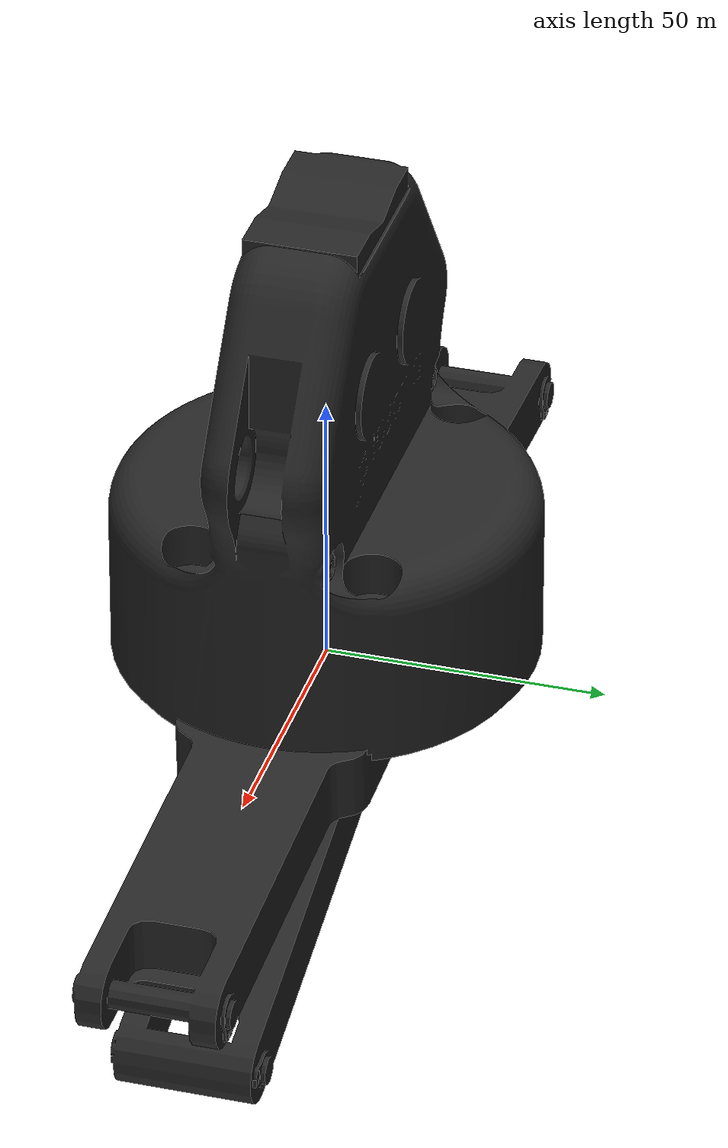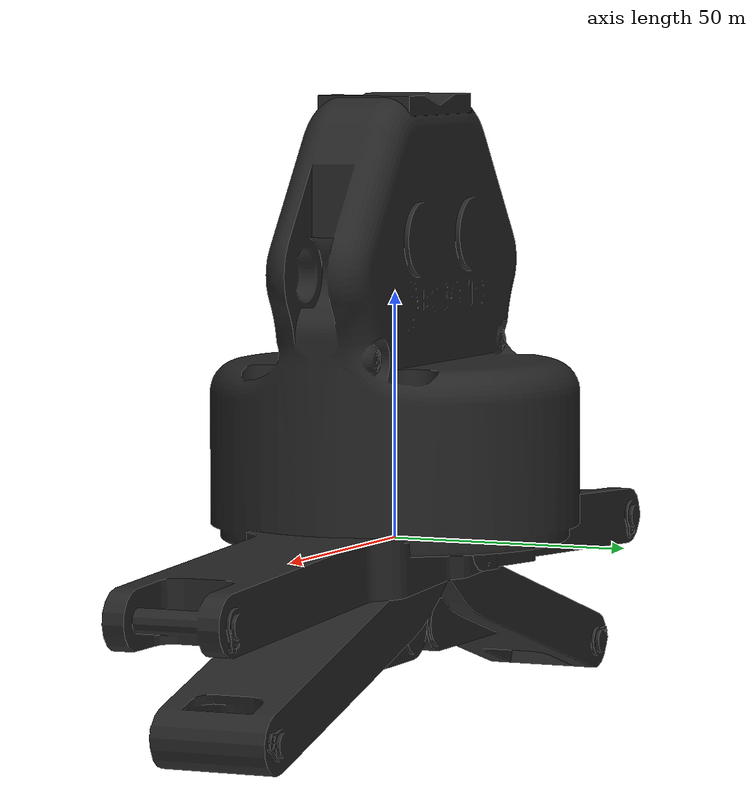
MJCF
<mujoco model="robotiq_2f140">
  <compiler angle="radian" meshdir="assets" autolimits="true"/>

  <option cone="elliptic" impratio="10"/>

  <asset>
    <material name="metal" rgba="0.58 0.58 0.58 1"/>
    <material name="silicone" rgba="0.1882 0.1882 0.1882 1"/>
    <material name="gray" rgba="0.4627 0.4627 0.4627 1"/>
    <material name="black" rgba="0.149 0.149 0.149 1"/>

    <mesh class="2f140" scale="0.001 0.001 0.001" file="base_mount.stl"/>
    <mesh class="2f140" file="base.stl"/>
    <mesh class="2f140" file="driver.stl"/>
    <mesh class="2f140" file="follower.stl"/>
    <mesh class="2f140" file="coupler.stl"/>
    <mesh class="2f140" scale="0.001 0.001 0.001" file="pad.stl"/>
    <mesh class="2f140" scale="0.001 0.001 0.001" file="silicone_pad.stl"/>
    <mesh class="2f140" file="spring_link.stl"/>
  </asset>

<!--
driver = outer knuckle
coupler = outer finger
spring_link = inner knuckle
follower = inner finger
 -->

  <default>
    <default class="2f140">
      <general biastype="affine"/>
      <joint axis="1 0 0"/>
      <default class="driver">
        <joint range="-0.8 0" armature="0.005" damping="0.1" solimplimit="0.95 0.99 0.001" solreflimit="0.005 1"/>
      </default>
      <default class="follower">
        <joint range="-0.8757 0.8757" armature="0.001" solimplimit="0.95 0.99 0.001" pos="0 0.005 -0.0175" solreflimit="0.005 1"/>
      </default>
      <default class="spring_link">
        <joint range="-0.8 0.29670597283" armature="0.001" stiffness="0.05" springref="-2.62" damping="0.00125"/>
      </default>
      <default class="coupler">
        <joint range="0 1.57" armature="0.001" solimplimit="0.95 0.99 0.001" solreflimit="0.005 1"/>
      </default>

      <default class="visual">
        <geom type="mesh" contype="0" conaffinity="0" group="2"/>
      </default>
      <default class="collision">
        <geom type="mesh" group="3"/>
        <default class="pad_box1">
          <geom mass="0" type="box" pos="0 -0.0026 0.028125" size="0.011 0.004 0.009375" friction="0.7"
            solimp="0.95 0.99 0.001" solref="0.004 1" priority="1" rgba="0.55 0.55 0.55 1"/>
        </default>
        <default class="pad_box2">
          <geom mass="0" type="box" pos="0 -0.0026 0.009375" size="0.011 0.004 0.009375" friction="0.6"
            solimp="0.95 0.99 0.001" solref="0.004 1" priority="1" rgba="0.45 0.45 0.45 1"/>
        </default>
      </default>
    </default>
  </default>
  <worldbody>
    <body name="base_mount" pos="0 0 0.007" childclass="2f140">
      <geom class="visual" mesh="base_mount" material="black"/>
      <geom class="collision" mesh="base_mount"/>
      <body name="base" pos="0 0 0.0038" quat="1 0 0 -1">
        <inertial mass="0.777441" pos="0 -2.70394e-05 0.0354675" quat="1 -0.00152849 0 0"
          diaginertia="0.000260285 0.000225381 0.000152708"/>
        <geom class="visual" mesh="base" material="black"/>
        <geom class="collision" mesh="base"/>
        <!-- Right-hand side 4-bar linkage -->
        <body name="right_driver" pos="0 0.030601 0.054905" quat="0 0 0.911903 0.410405">
          <inertial mass="0.0311462" pos="0.000163875 0.0458404 0.0117804" quat="0.881368 0.472423 -0.0024451 -0.000996122"
            diaginertia="2.96023e-05 2.79814e-05 4.39017e-06"/>
          <joint name="right_driver_joint" class="driver"/>
          <geom class="visual" mesh="driver" material="gray"/>
          <geom class="collision" mesh="driver"/>
          <body name="right_coupler" pos="0 0.01822 0.026001" quat="1 0 0 0">
            <inertial mass="0.0140974" pos="0 0.00301209 0.0232175" quat="0.705636 -0.0455904 0.0455904 0.705636"
              diaginertia="4.16206e-06 3.52216e-06 8.88131e-07"/>
            <joint name="right_coupler_joint" class="coupler"/>
            <geom class="visual" mesh="coupler" material="black"/>
            <geom class="collision" mesh="coupler"/>
          </body>
        </body>
        <body name="right_spring_link" pos="0 0.0127 0.06142" quat="0 0 -0.9135455 -0.406736">
          <inertial mass="0.0271177" pos="0.000123012 0.0507851 0.00103969" quat="0.497203 0.502496 -0.507943 0.492221"
            diaginertia="2.83809e-05 2.61936e-05 2.81319e-06"/>
          <joint name="right_spring_link_joint" class="spring_link"/>
          <geom class="visual" mesh="spring_link" material="black"/>
          <geom class="collision" mesh="spring_link"/>
          <body name="right_follower" pos="0 0.107454 0.01451853" quat="0.935013 -0.354613 0 0">
            <inertial mass="0.0261503" pos="0.000119314 0.0339244 -0.021841" quat="0.545437 0.430197 -0.442938 0.566776"
              diaginertia="1.62408e-05 1.59131e-05 2.38936e-06"/>
            <joint name="right_follower_joint" class="follower"/>
            <geom class="visual" mesh="follower" material="black"/>
            <geom class="collision" mesh="follower"/>
            <body name="right_pad" pos="0 0.012 -0.0294" quat="0.707107 -0.707107 0 0">
              <geom class="pad_box1" name="right_pad1"/>
              <geom class="pad_box2" name="right_pad2"/>
              <inertial mass="0.0035" pos="0 -0.0025 0.0185" quat="0.707107 0 0 0.707107"
                diaginertia="4.73958e-07 3.64583e-07 1.23958e-07"/>
              <geom class="visual" mesh="pad"/>
              <body name="right_silicone_pad">
                <geom class="visual" mesh="silicone_pad" material="black"/>
              </body>
            </body>
          </body>
        </body>
        <!-- Left-hand side 4-bar linkage -->
        <body name="left_driver" pos="0 -0.0306011 0.054904" quat="0.410405 0.911903 0 0">
          <inertial mass="0.0311462" pos="0.000163875 0.0458404 0.0117804" quat="0.881368 0.472423 -0.0024451 -0.000996122"
            diaginertia="2.96023e-05 2.79814e-05 4.39017e-06"/>
          <joint name="left_driver_joint" class="driver"/>
          <geom class="visual" mesh="driver" material="gray"/>
          <geom class="collision" mesh="driver"/>
          <body name="left_coupler" pos="0 0.01822 0.026001" quat="1 0 0 0">
            <inertial mass="0.0140974" pos="0 0.00301209 0.0232175" quat="0.705636 -0.0455904 0.0455904 0.705636"
              diaginertia="4.16206e-06 3.52216e-06 8.88131e-07"/>
            <joint name="left_coupler_joint" class="coupler"/>
            <geom class="visual" mesh="coupler" material="black"/>
            <geom class="collision" mesh="coupler"/>
          </body>
        </body>
        <body name="left_spring_link" pos="0 -0.0127 0.06142" quat="0.410405 0.911903 0 0">
          <inertial mass="0.0271177" pos="0.000123012 0.0507851 0.00103969" quat="0.497203 0.502496 -0.507943 0.492221"
            diaginertia="2.83809e-05 2.61936e-05 2.81319e-06"/>
          <joint name="left_spring_link_joint" class="spring_link"/>
          <geom class="visual" mesh="spring_link" material="black"/>
          <geom class="collision" mesh="spring_link"/>
          <body name="left_follower" pos="0 0.107454 0.01451853" quat="0.935013 -0.354613 0 0">
            <inertial mass="0.0261503" pos="0.000119314 0.0339244 -0.021841" quat="0.545437 0.430197 -0.442938 0.566776"
              diaginertia="1.62408e-05 1.59131e-05 2.38936e-06"/>
            <joint name="left_follower_joint" class="follower"/>
            <geom class="visual" mesh="follower" material="black"/>
            <geom class="collision" mesh="follower"/>
            <body name="left_pad" pos="0 0.012 -0.0294" quat="0.707107 -0.707107 0 0">
              <geom class="pad_box1" name="left_pad1"/>
              <geom class="pad_box2" name="left_pad2"/>
              <inertial mass="0.0035" pos="0 -0.0025 0.0185" quat="1 0 0 1"
                diaginertia="4.73958e-07 3.64583e-07 1.23958e-07"/>
              <geom class="visual" mesh="pad"/>
              <body name="left_silicone_pad">
                <geom class="visual" mesh="silicone_pad" material="black"/>
              </body>
            </body>
          </body>
        </body>
      </body>
    </body>
  </worldbody>

  <contact>
    <exclude body1="base" body2="left_driver"/>
    <exclude body1="base" body2="right_driver"/>
    <exclude body1="base" body2="left_spring_link"/>
    <exclude body1="base" body2="right_spring_link"/>
    <exclude body1="left_driver" body2="left_spring_link"/>
    <exclude body1="right_driver" body2="right_spring_link"/>
    <exclude body1="right_coupler" body2="right_follower"/>
    <exclude body1="left_coupler" body2="left_follower"/>
  </contact>

  <tendon>
    <fixed name="split">
      <joint joint="right_driver_joint" coef="-0.5"/>
      <joint joint="left_driver_joint" coef="-0.5"/>
    </fixed>
  </tendon>

  <equality>
    <connect anchor="0 0 0" body1="right_follower" body2="right_coupler" solimp="0.95 0.99 0.001" solref="0.005 1"/>
    <connect anchor="0 0 0" body1="left_follower" body2="left_coupler" solimp="0.95 0.99 0.001" solref="0.005 1"/>
    <joint joint1="right_driver_joint" joint2="left_driver_joint" polycoef="0 1 0 0 0" solimp="0.95 0.99 0.001"
      solref="0.005 1"/>
  </equality>

  <actuator>
    <general class="2f140" name="fingers_actuator" tendon="split" forcerange="-5 5" ctrlrange="0 255"
      gainprm="0.3137255 0 0" biasprm="0 -100 -10"/>
  </actuator>
</mujoco>
